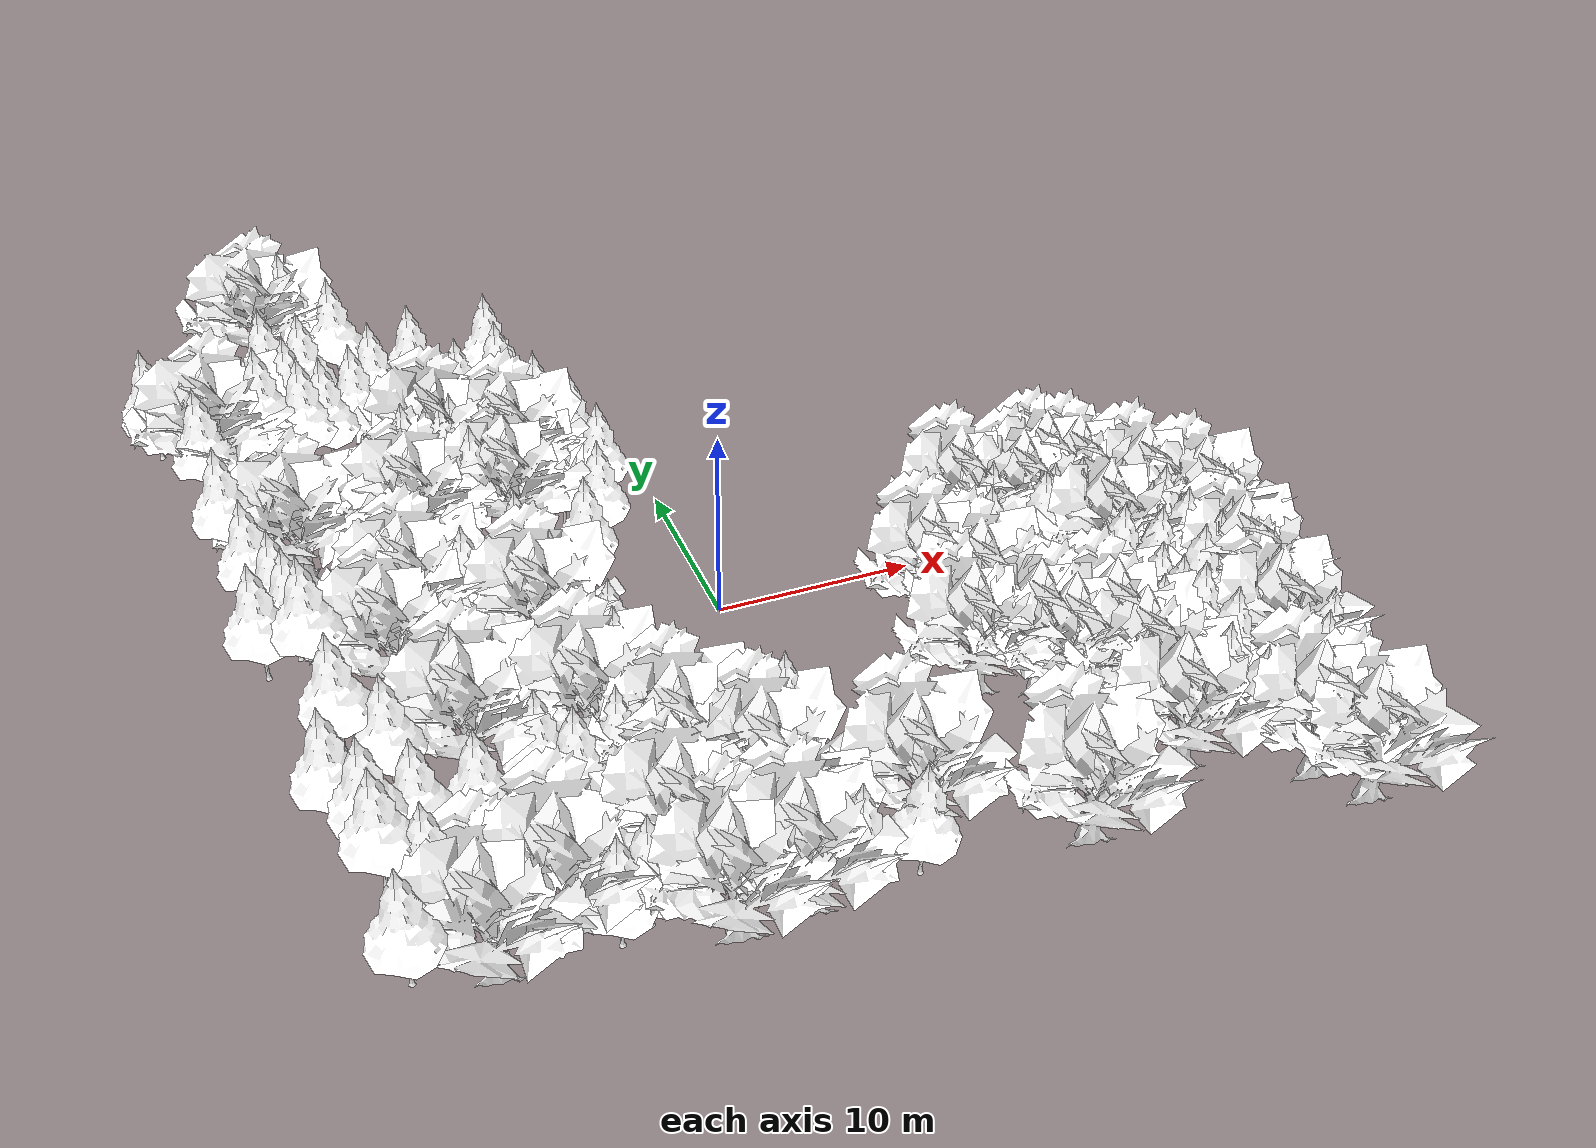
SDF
<sdf version="1.8">
 <world name="test_terrain">
  <plugin name="ignition::gazebo::systems::Physics" filename="ignition-gazebo-physics-system"/>
  <plugin name="ignition::gazebo::systems::UserCommands" filename="ignition-gazebo-user-commands-system"/>
  <plugin name="ignition::gazebo::systems::SceneBroadcaster" filename="ignition-gazebo-scene-broadcaster-system"/>
  <plugin name="ignition::gazebo::systems::Contact" filename="ignition-gazebo-contact-system"/>
  <light name="sun" type="directional">
   <cast_shadows>0</cast_shadows>
   <pose>0 0 100 0 -0 0</pose>
   <diffuse>0.8 0.8 0.8 1</diffuse>
   <specular>0.8 0.8 0.8 1</specular>
   <direction>-0.5 0.1 -0.9</direction>
   <intensity>5</intensity>
  </light>
  <gravity>0 0 -9.81</gravity>
  <magnetic_field>6e-06 2.3e-05 -4.2e-05</magnetic_field>
  <atmosphere type="adiabatic"/>
  <physics name="default_physics" type="ignored">
   <max_step_size>0.01</max_step_size>
   <real_time_factor>1</real_time_factor>
   <real_time_update_rate>100</real_time_update_rate>
  </physics>
  <scene>
   <ambient>0.3 0.3 0.3 1</ambient>
   <background>0.15 0.15 0.18 1</background>
   <shadows>1</shadows>
   <grid>0</grid>
  </scene>
  <spherical_coordinates>
   <latitude_deg>0.0</latitude_deg>
   <longitude_deg>0.0</longitude_deg>
   <elevation>10.0</elevation>
   <heading_deg>0</heading_deg>
   <surface_model>EARTH_WGS84</surface_model>
  </spherical_coordinates>
  <include><uri>model://oak_tree</uri><name>big_oak_tree</name><pose>9.43329 -19.917 0 0 -0 0</pose></include>
  <include><uri>model://pine_tree</uri><name>pine_tree</name><pose>21.4394 -2.14658 0 0 -0 0</pose></include>
  <include><uri>model://pine_tree</uri><name>pine_tree_0</name><pose>13.8044 -1.25473 0 0 -0 0</pose></include>
  <include><uri>model://pine_tree</uri><name>pine_tree_1</name><pose>12.8297 -3.04521 0 0 -0 0</pose></include>
  <include>
   <uri>model://pine_tree</uri>
   <name>pine_tree_clone</name>
   <pose>13.0693 -6.64818 0 0 -0 0</pose>
  </include>
  <include>
   <uri>model://pine_tree</uri>
   <name>pine_tree_clone_0</name>
   <pose>15.9325 -2.69784 0 0 -0 0</pose>
  </include>
  <include>
   <uri>model://pine_tree</uri>
   <name>pine_tree_clone_1</name>
   <pose>16.4618 -7.5118 0 0 -0 0</pose>
  </include>
  <include>
   <uri>model://pine_tree</uri>
   <name>pine_tree_clone_2</name>
   <pose>15.5992 -8.62299 0 0 -0 0</pose>
  </include>
  <include>
   <uri>model://pine_tree</uri>
   <name>pine_tree_clone_3</name>
   <pose>17.5876 -3.32673 0 0 -0 0</pose>
  </include>
  <include>
   <uri>model://pine_tree</uri>
   <name>pine_tree_clone_4</name>
   <pose>20.2155 -5.4361 0 0 -0 0</pose>
  </include>
  <include>
   <uri>model://pine_tree</uri>
   <name>pine_tree_clone_5</name>
   <pose>18.1112 -9.88956 0 0 -0 0</pose>
  </include>
  <include>
   <uri>model://pine_tree</uri>
   <name>pine_tree_clone_6</name>
   <pose>21.5683 -6.51792 0 0 -0 0</pose>
  </include>
  <include>
   <uri>model://pine_tree</uri>
   <name>pine_tree_clone_7</name>
   <pose>18.0715 -6.57958 0 0 -0 0</pose>
  </include>
  <include>
   <uri>model://pine_tree</uri>
   <name>pine_tree_clone_8</name>
   <pose>22.0412 -8.63282 0 0 -0 0</pose>
  </include>
  <include>
   <uri>model://pine_tree</uri>
   <name>pine_tree_clone_9</name>
   <pose>20.7102 -9.39914 0 0 -0 0</pose>
  </include>
  <include>
   <uri>model://pine_tree</uri>
   <name>pine_tree_clone_10</name>
   <pose>19.1916 -11.8714 0 0 -0 0</pose>
  </include>
  <include><uri>model://pine_tree</uri><name>pine_tree_clone_11</name><pose>23 -12 0 0 -0 0</pose></include>
  <include><uri>model://pine_tree</uri><name>pine_tree_clone_12</name><pose>23 -8 0 0 -0 0</pose></include>
  <include>
   <uri>model://pine_tree</uri>
   <name>pine_tree_clone_13</name>
   <pose>15.1891 -10.5551 0 0 -0 0</pose>
  </include>
  <include>
   <uri>model://pine_tree</uri>
   <name>pine_tree_clone_14</name>
   <pose>19.5742 -13.9939 0 0 -0 0</pose>
  </include>
  <include>
   <uri>model://pine_tree</uri>
   <name>pine_tree_clone_15</name>
   <pose>21.865 -12.6724 0 0 -0 0</pose>
  </include>
  <include>
   <uri>model://pine_tree</uri>
   <name>pine_tree_clone_16</name>
   <pose>16.5908 -2.40598 0 0 -0 0</pose>
  </include>
  <include>
   <uri>model://pine_tree</uri>
   <name>pine_tree_clone_17</name>
   <pose>19.1914 -3.57026 0 0 -0 0</pose>
  </include>
  <include>
   <uri>model://pine_tree</uri>
   <name>pine_tree_clone_18</name>
   <pose>18.0948 -2.39771 0 0 -0 0</pose>
  </include>
  <include>
   <uri>model://pine_tree</uri>
   <name>pine_tree_clone_19</name>
   <pose>21.5373 -4.47443 0 0 -0 0</pose>
  </include>
  <include>
   <uri>model://pine_tree</uri>
   <name>pine_tree_clone_20</name>
   <pose>18.7146 -10.8124 -0.227861 0 -0 0</pose>
  </include>
  <include>
   <uri>model://pine_tree</uri>
   <name>pine_tree_clone_21</name>
   <pose>16.9514 -11.9962 0 0 -0 0</pose>
  </include>
  <include>
   <uri>model://pine_tree</uri>
   <name>pine_tree_clone_22</name>
   <pose>19.6252 -7.3944 0 0 -0 0</pose>
  </include>
  <include>
   <uri>model://pine_tree</uri>
   <name>pine_tree_clone_23</name>
   <pose>23.5976 -10.5379 0 0 -0 0</pose>
  </include>
  <include>
   <uri>model://pine_tree</uri>
   <name>pine_tree_clone_24</name>
   <pose>17.8664 -16.0352 0 0 -0 0</pose>
  </include>
  <include>
   <uri>model://pine_tree</uri>
   <name>pine_tree_clone_25</name>
   <pose>23.5189 -15.5478 0 0 -0 0</pose>
  </include>
  <include>
   <uri>model://pine_tree</uri>
   <name>pine_tree_clone_26</name>
   <pose>22.344 -16.8387 0 0 -0 0</pose>
  </include>
  <include>
   <uri>model://pine_tree</uri>
   <name>pine_tree_clone_27</name>
   <pose>18.4558 -17.9874 0 0 -0 0</pose>
  </include>
  <include>
   <uri>model://pine_tree</uri>
   <name>pine_tree_clone_28</name>
   <pose>21.0693 -18.9711 0 0 -0 0</pose>
  </include>
  <include>
   <uri>model://pine_tree</uri>
   <name>pine_tree_clone_29</name>
   <pose>-10.9381 -18.7415 0 0 -0 0</pose>
  </include>
  <include>
   <uri>model://pine_tree</uri>
   <name>pine_tree_clone_30</name>
   <pose>1.80254 -19.3998 0 0 -0 0</pose>
  </include>
  <include>
   <uri>model://pine_tree</uri>
   <name>pine_tree_clone_31</name>
   <pose>-10.621 -11.9311 0.733716 0 -0 0</pose>
  </include>
  <include>
   <uri>model://pine_tree</uri>
   <name>pine_tree_clone_32</name>
   <pose>-14.7889 -12.1236 0.979974 0 -0 0</pose>
  </include>
  <include><uri>model://pine_tree</uri><name>pine_tree_clone_33</name><pose>-1 -11 0 0 -0 0</pose></include>
  <include>
   <uri>model://pine_tree</uri>
   <name>pine_tree_clone_34</name>
   <pose>-7.04507 -12.6303 0 0 -0 0</pose>
  </include>
  <include>
   <uri>model://pine_tree</uri>
   <name>pine_tree_clone_35</name>
   <pose>-1.08314 -19.5148 0 0 -0 0</pose>
  </include>
  <include>
   <uri>model://pine_tree</uri>
   <name>pine_tree_clone_36</name>
   <pose>-6.93618 -5.42436 0 0 -0 0</pose>
  </include>
  <include>
   <uri>model://pine_tree</uri>
   <name>pine_tree_clone_37</name>
   <pose>-14.3887 -7.02674 2.34079 0 -0 0</pose>
  </include>
  <include>
   <uri>model://pine_tree</uri>
   <name>pine_tree_clone_38</name>
   <pose>-8.06508 3.17165 0 0 -0 0</pose>
  </include>
  <include><uri>model://pine_tree</uri><name>pine_tree_clone_39</name><pose>-8 1 0 0 -0 0</pose></include>
  <include>
   <uri>model://pine_tree</uri>
   <name>pine_tree_clone_40</name>
   <pose>-12.0338 1.27378 1.07649 0 -0 0</pose>
  </include>
  <include>
   <uri>model://pine_tree</uri>
   <name>pine_tree_clone_41</name>
   <pose>-10.8307 10.2285 2.10599 0 -0 0</pose>
  </include>
  <include>
   <uri>model://pine_tree</uri>
   <name>pine_tree_clone_42</name>
   <pose>-9.89356 8.11224 1.82039 0 -0 0</pose>
  </include>
  <include>
   <uri>model://pine_tree</uri>
   <name>pine_tree_clone_43</name>
   <pose>-22.106 9.18539 5.98051 0 -0 0</pose>
  </include>
  <include>
   <uri>model://pine_tree</uri>
   <name>pine_tree_clone_44</name>
   <pose>-19.0102 11.3977 6.26596 0 -0 0</pose>
  </include>
  <include>
   <uri>model://pine_tree</uri>
   <name>pine_tree_clone_45</name>
   <pose>-14.4945 17.59 5.89869 0 -0 0</pose>
  </include>
  <include>
   <uri>model://pine_tree</uri>
   <name>pine_tree_clone_46</name>
   <pose>-24.014 15.9952 4.6043 0 -0 0</pose>
  </include>
  <include>
   <uri>model://pine_tree</uri>
   <name>pine_tree_clone_47</name>
   <pose>-11.9452 -10.8976 1.16771 0 -0 0</pose>
  </include>
  <include>
   <uri>model://pine_tree</uri>
   <name>pine_tree_clone_48</name>
   <pose>-17.7249 -16.0854 1.65645 0 -0 0</pose>
  </include>
  <include>
   <uri>model://pine_tree</uri>
   <name>pine_tree_clone_49</name>
   <pose>-9.52316 -18.1493 0 0 -0 0</pose>
  </include>
  <include>
   <uri>model://pine_tree</uri>
   <name>pine_tree_clone_50</name>
   <pose>-8.56737 -11.13 0.532276 0 -0 0</pose>
  </include>
  <include>
   <uri>model://pine_tree</uri>
   <name>pine_tree_clone_51</name>
   <pose>-19.5361 -8.80903 4.75078 0 -0 0</pose>
  </include>
  <include>
   <uri>model://pine_tree</uri>
   <name>pine_tree_clone_52</name>
   <pose>-10.1785 11.0081 1.99856 0 -0 0</pose>
  </include>
  <include>
   <uri>model://pine_tree</uri>
   <name>pine_tree_clone_53</name>
   <pose>-16.4755 19.6809 6.65326 0 -0 0</pose>
  </include>
  <include>
   <uri>model://pine_tree</uri>
   <name>pine_tree_clone_54</name>
   <pose>-18.169 16.127 5.63073 0 -0 0</pose>
  </include>
  <include>
   <uri>model://pine_tree</uri>
   <name>pine_tree_clone_55</name>
   <pose>-8.73155 4.62289 0 0 -0 0</pose>
  </include>
  <include>
   <uri>model://pine_tree</uri>
   <name>pine_tree_clone_56</name>
   <pose>-5.28953 4.57011 0 0 -0 0</pose>
  </include>
  <include>
   <uri>model://pine_tree</uri>
   <name>pine_tree_clone_57</name>
   <pose>-6.56092 -3.50117 0 0 -0 0</pose>
  </include>
  <include>
   <uri>model://pine_tree</uri>
   <name>pine_tree_clone_58</name>
   <pose>-5.27582 8.91725 0.52427 0 -0 0</pose>
  </include>
  <include>
   <uri>model://pine_tree</uri>
   <name>pine_tree_clone_59</name>
   <pose>-20.1011 -0.475088 3.20928 0 -0 0</pose>
  </include>
  <include>
   <uri>model://pine_tree</uri>
   <name>pine_tree_clone_60</name>
   <pose>-21.2712 3.98784 3.04312 0 -0 0</pose>
  </include>
  <include>
   <uri>model://pine_tree</uri>
   <name>pine_tree_clone_61</name>
   <pose>-21.6969 -2.66694 4.33502 0 -0 0</pose>
  </include>
  <include>
   <uri>model://pine_tree</uri>
   <name>pine_tree_clone_62</name>
   <pose>-19.3475 -15.423 3.35165 0 -0 0</pose>
  </include>
  <include>
   <uri>model://pine_tree</uri>
   <name>pine_tree_clone_63</name>
   <pose>-17.379 -12.6754 1.80445 0 -0 0</pose>
  </include>
  <include>
   <uri>model://pine_tree</uri>
   <name>pine_tree_clone_64</name>
   <pose>-17.8234 -9.76913 2.8937 0 -0 0</pose>
  </include>
  <include>
   <uri>model://pine_tree</uri>
   <name>pine_tree_clone_65</name>
   <pose>-20.5344 -11.8131 3.64443 0 -0 0</pose>
  </include>
  <include>
   <uri>model://pine_tree</uri>
   <name>pine_tree_clone_66</name>
   <pose>-19.8322 -4.96585 5.83855 0 -0 0</pose>
  </include>
  <include>
   <uri>model://pine_tree</uri>
   <name>pine_tree_clone_67</name>
   <pose>-21.8551 6.32652 4.48291 0 -0 0</pose>
  </include>
  <include>
   <uri>model://pine_tree</uri>
   <name>pine_tree_clone_68</name>
   <pose>-20.4396 2.04161 2.48994 0 -0 0</pose>
  </include>
  <include>
   <uri>model://pine_tree</uri>
   <name>pine_tree_clone_69</name>
   <pose>-19.3657 -19.4262 1.9927 0 -0 0</pose>
  </include>
  <include>
   <uri>model://pine_tree</uri>
   <name>pine_tree_clone_70</name>
   <pose>-19.4396 -13.6671 3.43759 0 -0 0</pose>
  </include>
  <include>
   <uri>model://pine_tree</uri>
   <name>pine_tree_clone_71</name>
   <pose>-2.76349 10.771 0 0 -0 0</pose>
  </include>
  <include>
   <uri>model://pine_tree</uri>
   <name>pine_tree_clone_72</name>
   <pose>-4.98322 14.5779 1.35255 0 -0 0</pose>
  </include>
  <include>
   <uri>model://pine_tree</uri>
   <name>pine_tree_clone_73</name>
   <pose>-8.68838 16.1558 2.02348 0 -0 0</pose>
  </include>
  <include>
   <uri>model://pine_tree</uri>
   <name>pine_tree_clone_74</name>
   <pose>-10.7489 17.1938 3.87012 0 -0 0</pose>
  </include>
  <include>
   <uri>model://pine_tree</uri>
   <name>pine_tree_clone_75</name>
   <pose>-6.67931 17.5222 3.5187 0 -0 0</pose>
  </include>
  <include>
   <uri>model://pine_tree</uri>
   <name>pine_tree_clone_76</name>
   <pose>-12.9706 16.2098 3.80023 0 -0 0</pose>
  </include>
  <include>
   <uri>model://pine_tree</uri>
   <name>pine_tree_clone_77</name>
   <pose>-3.28415 14.0482 0 0 -0 0</pose>
  </include>
  <include>
   <uri>model://pine_tree</uri>
   <name>pine_tree_clone_78</name>
   <pose>-10.1838 14.5676 2.24895 0 -0 0</pose>
  </include>
  <include>
   <uri>model://pine_tree</uri>
   <name>pine_tree_clone_79</name>
   <pose>-6.51867 16.1738 2.58262 0 -0 0</pose>
  </include>
  <include>
   <uri>model://pine_tree</uri>
   <name>pine_tree_clone_80</name>
   <pose>-3.78338 7.36167 0 0 -0 0</pose>
  </include>
  <include>
   <uri>model://pine_tree</uri>
   <name>pine_tree_clone_81</name>
   <pose>-17.4553 13.188 5.53835 0 -0 0</pose>
  </include>
  <include>
   <uri>model://pine_tree</uri>
   <name>pine_tree_clone_82</name>
   <pose>-16.0667 11.7835 4.86872 0 -0 0</pose>
  </include>
  <include>
   <uri>model://pine_tree</uri>
   <name>pine_tree_clone_83</name>
   <pose>-14.2377 14.7129 3.61517 0 -0 0</pose>
  </include>
  <include>
   <uri>model://pine_tree</uri>
   <name>pine_tree_clone_84</name>
   <pose>-16.366 16.2004 5.00113 0 -0 0</pose>
  </include>
  <include>
   <uri>model://pine_tree</uri>
   <name>pine_tree_clone_85</name>
   <pose>-17.1462 11.2283 5.4329 0 -0 0</pose>
  </include>
  <include>
   <uri>model://pine_tree</uri>
   <name>pine_tree_clone_86</name>
   <pose>-12.7135 10.1934 2.50466 0 -0 0</pose>
  </include>
  <include>
   <uri>model://oak_tree</uri>
   <name>big_oak_tree_clone</name>
   <pose>20.5611 -19.9003 0 0 -0 0</pose>
  </include>
  <include>
   <uri>model://oak_tree</uri>
   <name>big_oak_tree_clone_0</name>
   <pose>15.3811 -17.3707 0 0 -0 0</pose>
  </include>
  <include>
   <uri>model://oak_tree</uri>
   <name>big_oak_tree_clone_1</name>
   <pose>15.4472 -13.9044 0 0 -0 0</pose>
  </include>
  <include>
   <uri>model://oak_tree</uri>
   <name>big_oak_tree_clone_10</name>
   <pose>16.1745 -0.900525 0 0 -0 0</pose>
  </include>
  <include>
   <uri>model://oak_tree</uri>
   <name>big_oak_tree_clone_11</name>
   <pose>10.9326 -6.76057 0 0 -0 0</pose>
  </include>
  <include>
   <uri>model://oak_tree</uri>
   <name>big_oak_tree_clone_12</name>
   <pose>9.49051 -4.47476 0 0 -0 0</pose>
  </include>
  <include>
   <uri>model://oak_tree</uri>
   <name>big_oak_tree_clone_13</name>
   <pose>13.4299 0.469242 0 0 -0 0</pose>
  </include>
  <include>
   <uri>model://oak_tree</uri>
   <name>big_oak_tree_clone_14</name>
   <pose>18.0494 0.251397 0 0 -0 0</pose>
  </include>
  <include>
   <uri>model://oak_tree</uri>
   <name>big_oak_tree_clone_15</name>
   <pose>23.4065 -9.41853 0 0 -0 0</pose>
  </include>
  <include>
   <uri>model://oak_tree</uri>
   <name>big_oak_tree_clone_16</name>
   <pose>15.2298 -11.6992 0 0 -0 0</pose>
  </include>
  <include>
   <uri>model://oak_tree</uri>
   <name>big_oak_tree_clone_17</name>
   <pose>21.9441 -22.0289 0 0 -0 0</pose>
  </include>
  <include>
   <uri>model://oak_tree</uri>
   <name>big_oak_tree_clone_18</name>
   <pose>-6.3308 -19.7004 0 0 -0 0</pose>
  </include>
  <include>
   <uri>model://oak_tree</uri>
   <name>big_oak_tree_clone_19</name>
   <pose>-15.8892 -18.3686 0 0 -0 0</pose>
  </include>
  <include><uri>model://oak_tree</uri><name>big_oak_tree_clone_2</name><pose>13 -12 0 0 -0 0</pose></include>
  <include>
   <uri>model://oak_tree</uri>
   <name>big_oak_tree_clone_20</name>
   <pose>-2.79465 -14.1825 0 0 -0 0</pose>
  </include>
  <include>
   <uri>model://oak_tree</uri>
   <name>big_oak_tree_clone_21</name>
   <pose>-8.84235 -8.39062 0.729852 0 -0 0</pose>
  </include>
  <include>
   <uri>model://oak_tree</uri>
   <name>big_oak_tree_clone_22</name>
   <pose>-14.1278 -8.38369 1.45416 0 -0 0</pose>
  </include>
  <include>
   <uri>model://oak_tree</uri>
   <name>big_oak_tree_clone_23</name>
   <pose>2.98147 -16.6418 0 0 -0 0</pose>
  </include>
  <include>
   <uri>model://oak_tree</uri>
   <name>big_oak_tree_clone_24</name>
   <pose>-7.10384 -15.841 0 0 -0 0</pose>
  </include>
  <include>
   <uri>model://oak_tree</uri>
   <name>big_oak_tree_clone_25</name>
   <pose>-12.4644 -17.104 0 0 -0 0</pose>
  </include>
  <include>
   <uri>model://oak_tree</uri>
   <name>big_oak_tree_clone_26</name>
   <pose>-5.79583 -11.7465 0.373695 0 -0 0</pose>
  </include>
  <include>
   <uri>model://oak_tree</uri>
   <name>big_oak_tree_clone_27</name>
   <pose>-3.27309 -19.4173 0 0 -0 0</pose>
  </include>
  <include>
   <uri>model://oak_tree</uri>
   <name>big_oak_tree_clone_28</name>
   <pose>-9.04886 -1.24474 0.542853 0 -0 0</pose>
  </include>
  <include>
   <uri>model://oak_tree</uri>
   <name>big_oak_tree_clone_29</name>
   <pose>-14.4077 1.5292 1.02996 0 -0 0</pose>
  </include>
  <include>
   <uri>model://oak_tree</uri>
   <name>big_oak_tree_clone_3</name>
   <pose>12 -10.5745 0 0 -0 0</pose>
  </include>
  <include>
   <uri>model://oak_tree</uri>
   <name>big_oak_tree_clone_30</name>
   <pose>-16 -2 1.23025 0 -0 0</pose>
  </include>
  <include>
   <uri>model://oak_tree</uri>
   <name>big_oak_tree_clone_31</name>
   <pose>-11.6498 11.9556 2.21812 0.070084 0.186714 0.01303</pose>
  </include>
  <include>
   <uri>model://oak_tree</uri>
   <name>big_oak_tree_clone_32</name>
   <pose>-7.01789 11.016 1.4835 0 -0 0</pose>
  </include>
  <include>
   <uri>model://oak_tree</uri>
   <name>big_oak_tree_clone_33</name>
   <pose>-8 7.55495 1.22825 0 -0 0</pose>
  </include>
  <include>
   <uri>model://oak_tree</uri>
   <name>big_oak_tree_clone_34</name>
   <pose>-18.6778 6.13913 2.37041 0 -0 0</pose>
  </include>
  <include>
   <uri>model://oak_tree</uri>
   <name>big_oak_tree_clone_36</name>
   <pose>-21.1882 11.2379 5.44671 0 -0 0</pose>
  </include>
  <include>
   <uri>model://oak_tree</uri>
   <name>big_oak_tree_clone_37</name>
   <pose>-17.6725 19.8003 6.08332 0 -0 0</pose>
  </include>
  <include>
   <uri>model://oak_tree</uri>
   <name>big_oak_tree_clone_38</name>
   <pose>-12.8351 7.08676 1.64267 0 -0 0</pose>
  </include>
  <include>
   <uri>model://oak_tree</uri>
   <name>big_oak_tree_clone_4</name>
   <pose>9.11293 -9.69079 0 0 -0 0</pose>
  </include>
  <include>
   <uri>model://oak_tree</uri>
   <name>big_oak_tree_clone_5</name>
   <pose>24.3064 -4.5614 0 0 -0 0</pose>
  </include>
  <include>
   <uri>model://oak_tree</uri>
   <name>big_oak_tree_clone_6</name>
   <pose>22.168 -2.5812 0 0 -0 0</pose>
  </include>
  <include>
   <uri>model://oak_tree</uri>
   <name>big_oak_tree_clone_7</name>
   <pose>19.4357 -0.635071 0 0 -0 0</pose>
  </include>
  <include>
   <uri>model://oak_tree</uri>
   <name>big_oak_tree_clone_8</name>
   <pose>22.6684 -13.6935 0 0 -0 0</pose>
  </include>
  <include>
   <uri>model://oak_tree</uri>
   <name>big_oak_tree_clone_9</name>
   <pose>18.9113 -4.67329 0 0 -0 0</pose>
  </include>
 </world>
</sdf>

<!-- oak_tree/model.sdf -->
<sdf version="1.7">
  <model name="oak_tree">
    <static>true</static>
    <link name="link">
      <collision name="collision">
        <geometry>
          <mesh>
            <uri>model://oak_tree/meshes/oak_tree.dae</uri>
          </mesh>
        </geometry>
      </collision>
      <visual name="branch">
        <geometry>
          <mesh>
            <uri>model://oak_tree/meshes/oak_tree.dae</uri>
            <submesh>
              <name>Branch</name>
            </submesh>
          </mesh>
        </geometry>
        <material>
          <double_sided>true</double_sided>
          <diffuse>1.0 1.0 1.0</diffuse>
          <script>
            <uri>model://oak_tree/materials/scripts/</uri>
            <uri>model://oak_tree/materials/textures/</uri>
            <name>OakTree/Branch</name>
          </script>

          <pbr>
            <metal>
              <albedo_map>model://oak_tree/materials/textures/branch_diffuse.png</albedo_map>
            </metal>
          </pbr>
        </material>
      </visual>
      <visual name="bark">
        <geometry>
          <mesh>
            <uri>model://oak_tree/meshes/oak_tree.dae</uri>
            <submesh>
              <name>Bark</name>
            </submesh>
          </mesh>
        </geometry>
        <material>
          <diffuse>1.0 1.0 1.0</diffuse>
          <script>
            <uri>model://oak_tree/materials/scripts/</uri>
            <uri>model://oak_tree/materials/textures/</uri>
            <name>OakTree/Bark</name>
          </script>

          <pbr>
            <metal>
              <albedo_map>model://oak_tree/materials/textures/bark_diffuse.png</albedo_map>
            </metal>
          </pbr>
        </material>
      </visual>
    </link>
  </model>
</sdf>

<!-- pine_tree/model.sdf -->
<sdf version="1.7">
  <model name="pine_tree">
    <static>true</static>
    <link name="link">
      <collision name="collision">
        <geometry>
          <mesh>
            <uri>model://pine_tree/meshes/pine_tree.dae</uri>
          </mesh>
        </geometry>
      </collision>
      <visual name="branch">
        <geometry>
          <mesh>
            <uri>model://pine_tree/meshes/pine_tree.dae</uri>
            <submesh>
              <name>Branch</name>
            </submesh>
          </mesh>
        </geometry>
        <material>
          <double_sided>true</double_sided>
          <diffuse>1.0 1.0 1.0</diffuse>
          <script>
            <uri>model://pine_tree/materials/scripts/</uri>
            <uri>model://pine_tree/materials/textures/</uri>
            <name>PineTree/Branch</name>
          </script>

          <pbr>
            <metal>
              <albedo_map>model://pine_tree/materials/textures/branch_2_diffuse.png</albedo_map>
            </metal>
          </pbr>
        </material>
      </visual>
      <visual name="bark">
        <geometry>
          <mesh>
            <uri>model://pine_tree/meshes/pine_tree.dae</uri>
            <submesh>
              <name>Bark</name>
            </submesh>
          </mesh>
        </geometry>
        <material>
          <diffuse>1.0 1.0 1.0</diffuse>
          <script>
            <uri>model://pine_tree/materials/scripts/</uri>
            <uri>model://pine_tree/materials/textures/</uri>
            <name>PineTree/Bark</name>
          </script>

          <pbr>
            <metal>
              <albedo_map>model://pine_tree/materials/textures/bark_diffuse.png</albedo_map>
            </metal>
          </pbr>
        </material>
      </visual>
    </link>
  </model>
</sdf>
